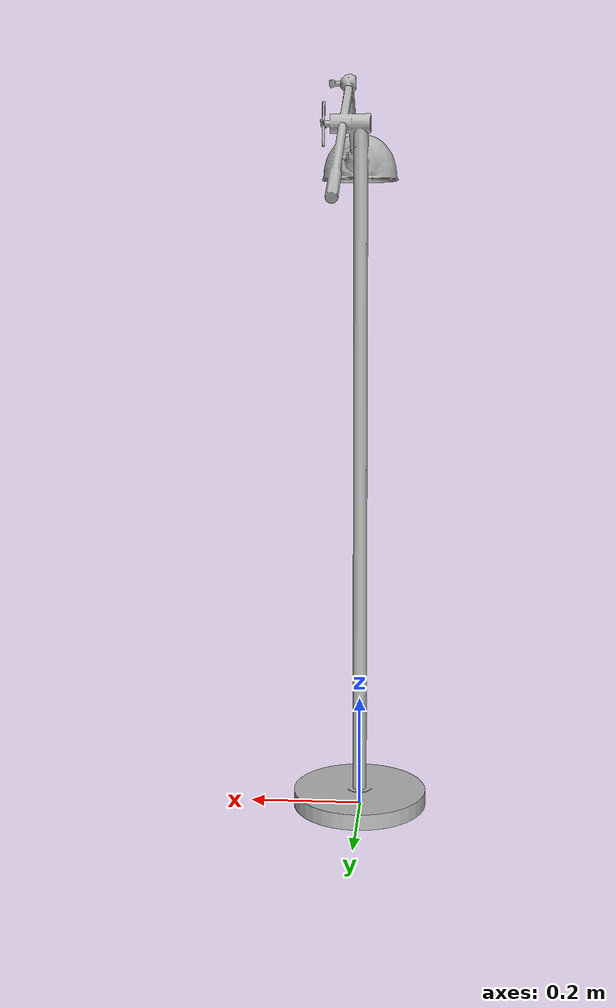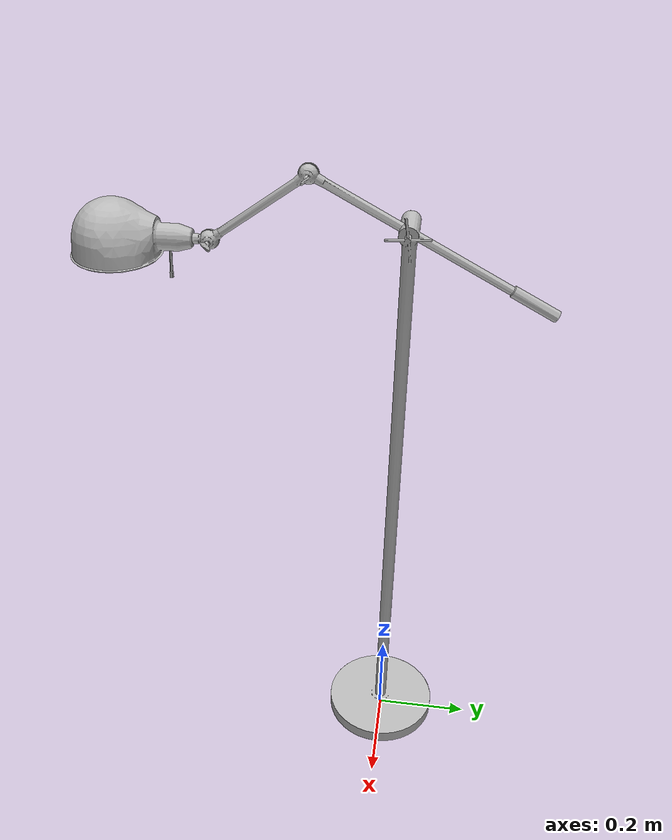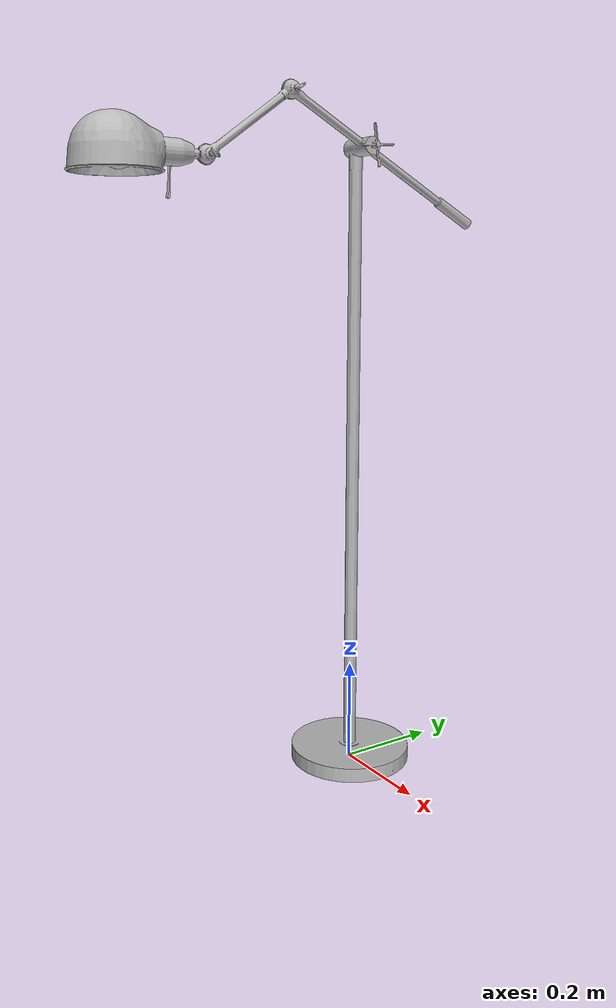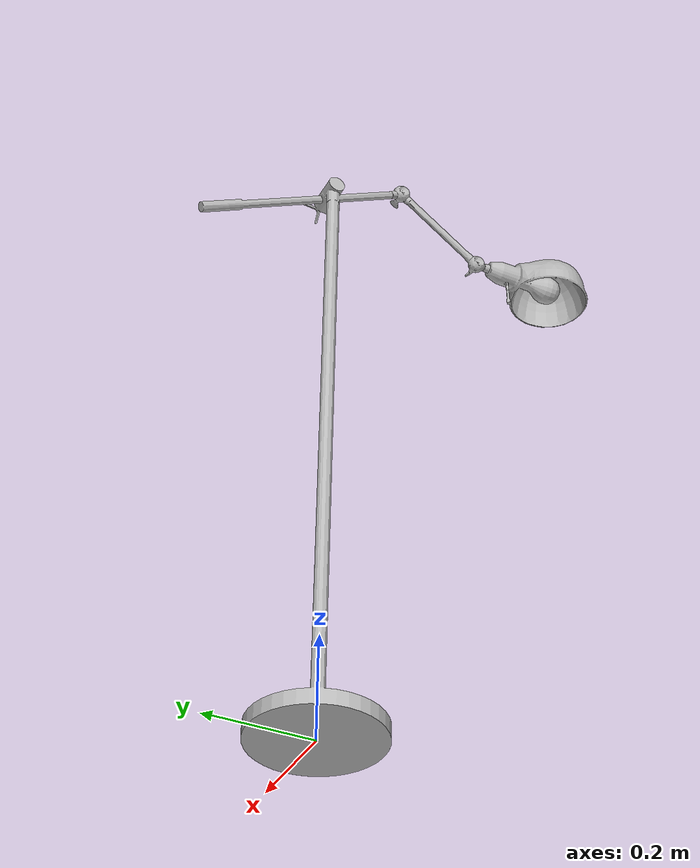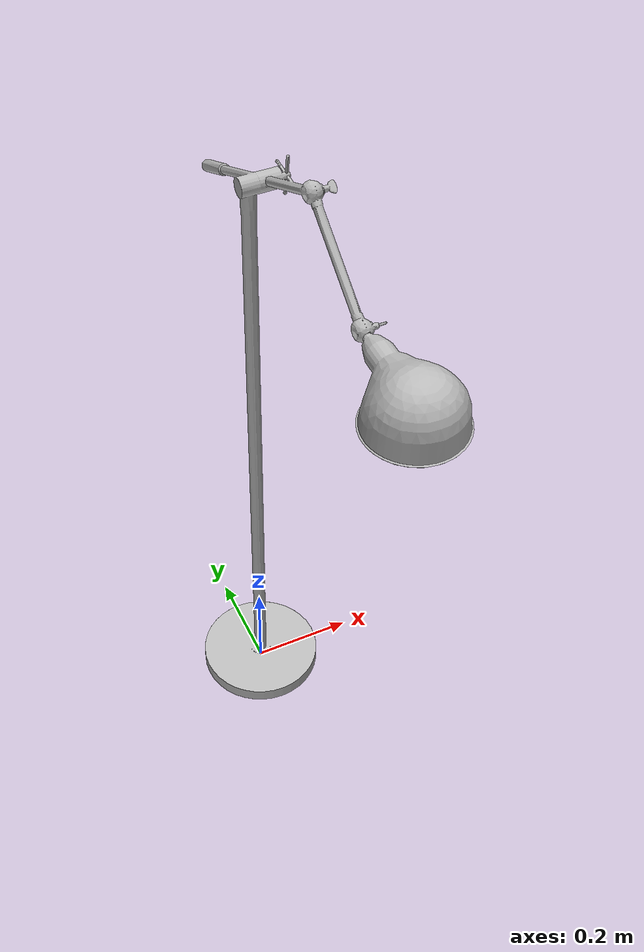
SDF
<sdf version="1.6">
	<model name="FloorLamps_Oa651b7cbe4d7_lod0">
		<link name="main_link">
			<visual name="visual_RootNode">
				<geometry>
					<mesh>
						<uri>model://FloorLamps_Oa651b7cbe4d7_lod0/meshes/visual_RootNode.dae</uri>
					</mesh>
				</geometry>
			</visual>
			<collision name="collision_RootNode_lod0_0">
				<geometry>
					<mesh>
						<uri>model://FloorLamps_Oa651b7cbe4d7_lod0/meshes/collision_RootNode_lod0_0.dae</uri>
					</mesh>
				</geometry>
			</collision>
		</link>
	</model>
</sdf>
